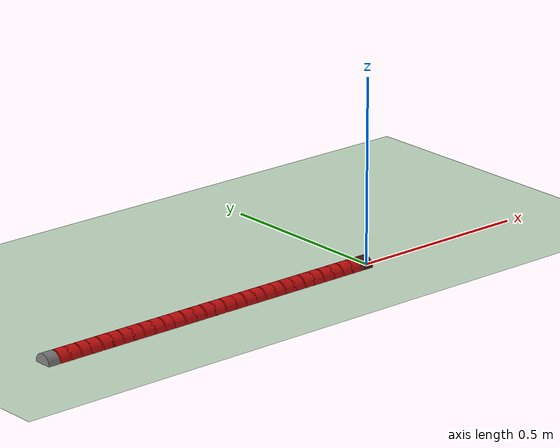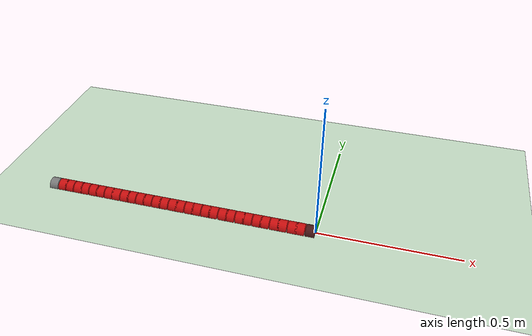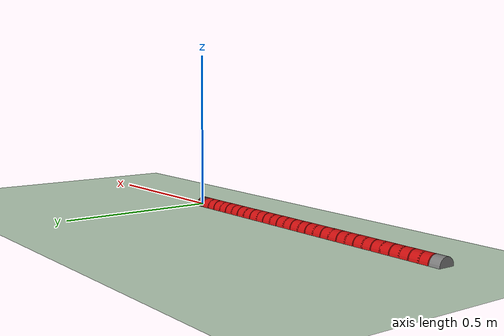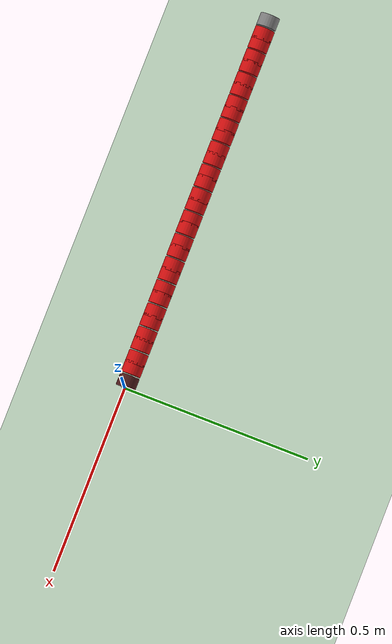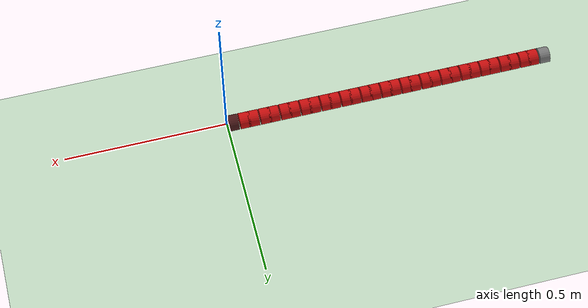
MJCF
<mujoco model="snake">
  <compiler angle="radian" autolimits="true"/>

  <option cone="pyramidal" impratio="100"/>

  <default>
    <geom solref="-1000 -80"/>
    <joint stiffness="0.0" armature="0.03"/>
    <motor ctrllimited="true" ctrlrange="-7.0 7.0"/>
  </default>

  <asset>
    <texture name="texplane" type="2d" builtin="checker" rgb1=".12 .14 .44" rgb2=".37 .55 1" width="100" height="100"/>
    <material name="MatPlane" reflectance="0.5" texture="texplane" texrepeat="1 1" texuniform="true"></material>
  </asset>

  <worldbody>
    <geom name="floor" pos="0 0 0" condim="3" material="MatPlane" size="100 100 0.125" rgba="0.8 0.9 0.8 1" type="plane"/>

    <light cutoff="100" diffuse="1 1 1" dir="-0 0 -1.3" directional="true" exponent="1" pos="0 0 1.3" specular=".1 .1 .1" castshadow="false"/>
    <light name="spotlight" mode="targetbodycom" target="trunk" pos="0 -1 2"/>

    <body name="trunk" pos="0 0 0">
      <camera name="track" mode="trackcom" pos="0 -2 0" xyaxes="1 0 0 0 0 1"/>
      <freejoint/>

      <inertial pos="0 0 0" mass="0.103" diaginertia="5.4796e-05 5.4796e-05 3.4814e-05"/>

      <geom size="0.026 0.0165" pos="-0.0183 0 0" quat="0.707107 0 -0.707107 0" type="cylinder" rgba="0.3 0.1 0.1 1"/>
      <geom size="0.01 0.001" pos="-0.001 0 0.01" quat="0.707107 0 -0.707107 0" type="cylinder" rgba="0.0 0.0 0.0 1"/>

      <body name="SA001__MoJo__OUTPUT_BODY" pos="-0.0366 0 0" quat="0.707107 0 -0.707107 0">
        <inertial pos="0 0 0.03195" mass="0.206" diaginertia="0.000319877 0.000319877 6.9628e-05"/>
        <joint name="SA001__MoJo" pos="0 0 0" axis="0 1 0" range="-1.57 1.57" damping="0.1" frictionloss="0.2"/>
        <geom size="0.026 0.0165" pos="0 0 0.0183" type="cylinder" rgba="0.82 0.06 0.06 1"/>
        <geom size="0.026 0.0165" pos="0 0 0.0456" quat="0.707123 0 0 -0.70709" type="cylinder" rgba="0.82 0.06 0.06 1"/>
        <body name="SA002__MoJo__OUTPUT_BODY" pos="0 0 0.0639" quat="0.707123 0 0 -0.70709">
          <inertial pos="0 0 0.03195" mass="0.206" diaginertia="0.000319877 0.000319877 6.9628e-05"/>
          <joint name="SA002__MoJo" pos="0 0 0" axis="0 1 0" range="-1.57 1.57" damping="0.1" frictionloss="0.2"/>
          <geom size="0.026 0.0165" pos="0 0 0.0183" type="cylinder" rgba="0.82 0.06 0.06 1"/>
          <geom size="0.026 0.0165" pos="0 0 0.0456" quat="0.707123 0 0 -0.70709" type="cylinder" rgba="0.82 0.06 0.06 1"/>
          <body name="SA003__MoJo__OUTPUT_BODY" pos="0 0 0.0639" quat="0.707123 0 0 -0.70709">
            <inertial pos="0 0 0.03195" mass="0.206" diaginertia="0.000319877 0.000319877 6.9628e-05"/>
            <joint name="SA003__MoJo" pos="0 0 0" axis="0 1 0" range="-1.57 1.57" damping="0.1" frictionloss="0.2"/>
            <geom size="0.026 0.0165" pos="0 0 0.0183" type="cylinder" rgba="0.82 0.06 0.06 1"/>
            <geom size="0.026 0.0165" pos="0 0 0.0456" quat="0.707123 0 0 -0.70709" type="cylinder" rgba="0.82 0.06 0.06 1"/>
            <body name="SA004__MoJo__OUTPUT_BODY" pos="0 0 0.0639" quat="0.707123 0 0 -0.70709">
              <inertial pos="0 0 0.03195" mass="0.206" diaginertia="0.000319877 0.000319877 6.9628e-05"/>
              <joint name="SA004__MoJo" pos="0 0 0" axis="0 1 0" range="-1.57 1.57" damping="0.1" frictionloss="0.2"/>
              <geom size="0.026 0.0165" pos="0 0 0.0183" type="cylinder" rgba="0.82 0.06 0.06 1"/>
              <geom size="0.026 0.0165" pos="0 0 0.0456" quat="0.707123 0 0 -0.70709" type="cylinder" rgba="0.82 0.06 0.06 1"/>
              <body name="SA005__MoJo__OUTPUT_BODY" pos="0 0 0.0639" quat="0.707123 0 0 -0.70709">
                <inertial pos="0 0 0.03195" mass="0.206" diaginertia="0.000319877 0.000319877 6.9628e-05"/>
                <joint name="SA005__MoJo" pos="0 0 0" axis="0 1 0" range="-1.57 1.57" damping="0.1" frictionloss="0.2"/>
                <geom size="0.026 0.0165" pos="0 0 0.0183" type="cylinder" rgba="0.82 0.06 0.06 1"/>
                <geom size="0.026 0.0165" pos="0 0 0.0456" quat="0.707123 0 0 -0.70709" type="cylinder" rgba="0.82 0.06 0.06 1"/>
                <body name="SA006__MoJo__OUTPUT_BODY" pos="0 0 0.0639" quat="0.707123 0 0 -0.70709">
                  <inertial pos="0 0 0.03195" mass="0.206" diaginertia="0.000319877 0.000319877 6.9628e-05"/>
                  <joint name="SA006__MoJo" pos="0 0 0" axis="0 1 0" range="-1.57 1.57" damping="0.1" frictionloss="0.2"/>
                  <geom size="0.026 0.0165" pos="0 0 0.0183" type="cylinder" rgba="0.82 0.06 0.06 1"/>
                  <geom size="0.026 0.0165" pos="0 0 0.0456" quat="0.707123 0 0 -0.70709" type="cylinder" rgba="0.82 0.06 0.06 1"/>
                  <body name="SA007__MoJo__OUTPUT_BODY" pos="0 0 0.0639" quat="0.707123 0 0 -0.70709">
                    <inertial pos="0 0 0.03195" mass="0.206" diaginertia="0.000319877 0.000319877 6.9628e-05"/>
                    <joint name="SA007__MoJo" pos="0 0 0" axis="0 1 0" range="-1.57 1.57" damping="0.1" frictionloss="0.2"/>
                    <geom size="0.026 0.0165" pos="0 0 0.0183" type="cylinder" rgba="0.82 0.06 0.06 1"/>
                    <geom size="0.026 0.0165" pos="0 0 0.0456" quat="0.707123 0 0 -0.70709" type="cylinder" rgba="0.82 0.06 0.06 1"/>
                    <body name="SA008__MoJo__OUTPUT_BODY" pos="0 0 0.0639" quat="0.707123 0 0 -0.70709">
                      <inertial pos="0 0 0.03195" mass="0.206" diaginertia="0.000319877 0.000319877 6.9628e-05"/>
                      <joint name="SA008__MoJo" pos="0 0 0" axis="0 1 0" range="-1.57 1.57" damping="0.1" frictionloss="0.2"/>
                      <geom size="0.026 0.0165" pos="0 0 0.0183" type="cylinder" rgba="0.82 0.06 0.06 1"/>
                      <geom size="0.026 0.0165" pos="0 0 0.0456" quat="0.707123 0 0 -0.70709" type="cylinder" rgba="0.82 0.06 0.06 1"/>
                      <body name="SA009__MoJo__OUTPUT_BODY" pos="0 0 0.0639" quat="0.707123 0 0 -0.70709">
                        <inertial pos="0 0 0.03195" mass="0.206" diaginertia="0.000319877 0.000319877 6.9628e-05"/>
                        <joint name="SA009__MoJo" pos="0 0 0" axis="0 1 0" range="-1.57 1.57" damping="0.1" frictionloss="0.2"/>
                        <geom size="0.026 0.0165" pos="0 0 0.0183" type="cylinder" rgba="0.82 0.06 0.06 1"/>
                        <geom size="0.026 0.0165" pos="0 0 0.0456" quat="0.707123 0 0 -0.70709" type="cylinder" rgba="0.82 0.06 0.06 1"/>
                        <body name="SA010__MoJo__OUTPUT_BODY" pos="0 0 0.0639" quat="0.707123 0 0 -0.70709">
                          <inertial pos="0 0 0.03195" mass="0.206" diaginertia="0.000319877 0.000319877 6.9628e-05"/>
                          <joint name="SA010__MoJo" pos="0 0 0" axis="0 1 0" range="-1.57 1.57" damping="0.1" frictionloss="0.2"/>
                          <geom size="0.026 0.0165" pos="0 0 0.0183" type="cylinder" rgba="0.82 0.06 0.06 1"/>
                          <geom size="0.026 0.0165" pos="0 0 0.0456" quat="0.707123 0 0 -0.70709" type="cylinder" rgba="0.82 0.06 0.06 1"/>
                          <body name="SA011__MoJo__OUTPUT_BODY" pos="0 0 0.0639" quat="0.707123 0 0 -0.70709">
                            <inertial pos="0 0 0.03195" mass="0.206" diaginertia="0.000319877 0.000319877 6.9628e-05"/>
                            <joint name="SA011__MoJo" pos="0 0 0" axis="0 1 0" range="-1.57 1.57" damping="0.1" frictionloss="0.2"/>
                            <geom size="0.026 0.0165" pos="0 0 0.0183" type="cylinder" rgba="0.82 0.06 0.06 1"/>
                            <geom size="0.026 0.0165" pos="0 0 0.0456" quat="0.707123 0 0 -0.70709" type="cylinder" rgba="0.82 0.06 0.06 1"/>
                            <body name="SA012__MoJo__OUTPUT_BODY" pos="0 0 0.0639" quat="0.707123 0 0 -0.70709">
                              <inertial pos="0 0 0.03195" mass="0.206" diaginertia="0.000319877 0.000319877 6.9628e-05"/>
                              <joint name="SA012__MoJo" pos="0 0 0" axis="0 1 0" range="-1.57 1.57" damping="0.1" frictionloss="0.2"/>
                              <geom size="0.026 0.0165" pos="0 0 0.0183" type="cylinder" rgba="0.82 0.06 0.06 1"/>
                              <geom size="0.026 0.0165" pos="0 0 0.0456" quat="0.707123 0 0 -0.70709" type="cylinder" rgba="0.82 0.06 0.06 1"/>
                              <body name="SA013__MoJo__OUTPUT_BODY" pos="0 0 0.0639" quat="0.707123 0 0 -0.70709">
                                <inertial pos="0 0 0.03195" mass="0.206" diaginertia="0.000319877 0.000319877 6.9628e-05"/>
                                <joint name="SA013__MoJo" pos="0 0 0" axis="0 1 0" range="-1.57 1.57" damping="0.1" frictionloss="0.2"/>
                                <geom size="0.026 0.0165" pos="0 0 0.0183" type="cylinder" rgba="0.82 0.06 0.06 1"/>
                                <geom size="0.026 0.0165" pos="0 0 0.0456" quat="0.707123 0 0 -0.70709" type="cylinder" rgba="0.82 0.06 0.06 1"/>
                                <body name="SA014__MoJo__OUTPUT_BODY" pos="0 0 0.0639" quat="0.707123 0 0 -0.70709">
                                  <inertial pos="0 0 0.03195" mass="0.206" diaginertia="0.000319877 0.000319877 6.9628e-05"/>
                                  <joint name="SA014__MoJo" pos="0 0 0" axis="0 1 0" range="-1.57 1.57" damping="0.1" frictionloss="0.2"/>
                                  <geom size="0.026 0.0165" pos="0 0 0.0183" type="cylinder" rgba="0.82 0.06 0.06 1"/>
                                  <geom size="0.026 0.0165" pos="0 0 0.0456" quat="0.707123 0 0 -0.70709" type="cylinder" rgba="0.82 0.06 0.06 1"/>
                                  <body name="SA015__MoJo__OUTPUT_BODY" pos="0 0 0.0639" quat="0.707123 0 0 -0.70709">
                                    <inertial pos="0 0 0.03195" mass="0.206" diaginertia="0.000319877 0.000319877 6.9628e-05"/>
                                    <joint name="SA015__MoJo" pos="0 0 0" axis="0 1 0" range="-1.57 1.57" damping="0.1" frictionloss="0.2"/>
                                    <geom size="0.026 0.0165" pos="0 0 0.0183" type="cylinder" rgba="0.82 0.06 0.06 1"/>
                                    <geom size="0.026 0.0165" pos="0 0 0.0456" quat="0.707123 0 0 -0.70709" type="cylinder" rgba="0.82 0.06 0.06 1"/>
                                    <body name="SA016__MoJo__OUTPUT_BODY" pos="0 0 0.0639" quat="0.707123 0 0 -0.70709">
                                      <inertial pos="0 0 0" mass="0.103" diaginertia="5.4796e-05 5.4796e-05 3.4814e-05"/>
                                      <joint name="SA016__MoJo" pos="0 0 0" axis="0 1 0" range="-1.57 1.57" damping="0.1" frictionloss="0.2"/>
                                      <geom name="dummy_foot" size="0.026 0.0165" pos="0 0 0.0183" type="cylinder" rgba="0.5 0.5 0.5 1"/>
                                    </body>
                                  </body>
                                </body>
                              </body>
                            </body>
                          </body>
                        </body>
                      </body>
                    </body>
                  </body>
                </body>
              </body>
            </body>
          </body>
        </body>
      </body>
    </body>
  </worldbody>

  <actuator>
    <motor name="actuator_1" joint="SA001__MoJo"></motor>
    <motor name="actuator_2" joint="SA002__MoJo"></motor>
    <motor name="actuator_3" joint="SA003__MoJo"></motor>
    <motor name="actuator_4" joint="SA004__MoJo"></motor>
    <motor name="actuator_5" joint="SA005__MoJo"></motor>
    <motor name="actuator_6" joint="SA006__MoJo"></motor>
    <motor name="actuator_7" joint="SA007__MoJo"></motor>
    <motor name="actuator_8" joint="SA008__MoJo"></motor>
    <motor name="actuator_9" joint="SA009__MoJo"></motor>
    <motor name="actuator_10" joint="SA010__MoJo"></motor>
    <motor name="actuator_11" joint="SA011__MoJo"></motor>
    <motor name="actuator_12" joint="SA012__MoJo"></motor>
    <motor name="actuator_13" joint="SA013__MoJo"></motor>
    <motor name="actuator_14" joint="SA014__MoJo"></motor>
    <motor name="actuator_15" joint="SA015__MoJo"></motor>
    <motor name="actuator_16" joint="SA016__MoJo"></motor>
  </actuator>

  <keyframe>
    <key name="home" qpos="0 0 0.026 1 0 0 0 0.0 0.0 0.0 0.0 0.0 0.0 0.0 0.0 0.0 0.0 0.0 0.0 0.0 0.0 0.0 0.0"/>
  </keyframe>
</mujoco>
